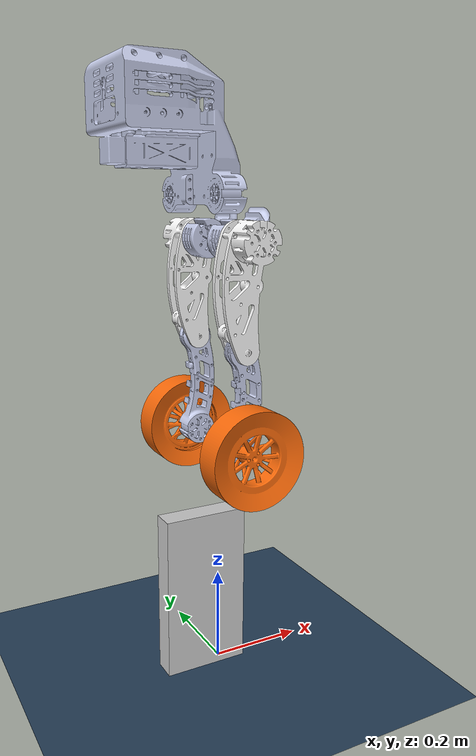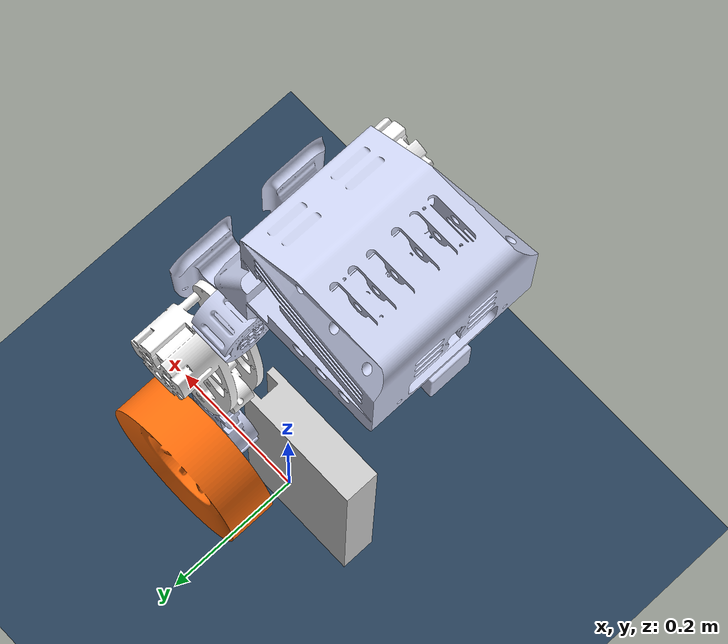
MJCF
<mujoco model="GOAT_on_Stand">
    <compiler angle="radian" coordinate="local" meshdir="../meshes/"/>
    <option timestep="0.01" gravity="0 0 -9.81"/>

    <!-- GOAT robot -->
    <include file="./goat_floating_no_hip.xml"/>

    <!-- Stand jig -->
    <asset>
        <mesh name="jig_mesh" file="GOAT_stand7mm35cm.stl" scale="0.9 1 1"/>
        <material name="jig_material" rgba="0.8 0.8 0.8 1.0"/>
    </asset>

    <worldbody>
        <light pos="0 0 1.5" dir="0 0 -1" directional="true"/>

        <body name="jig_link" pos="-0.04 0 0">
            <inertial pos="0 0 0" mass="10.0" fullinertia="0.05 0.05 0.05 0.0 0.0 0.0"/>
            <geom name="jig_geom" type="mesh" mesh="jig_mesh" material="jig_material"
                  pos="0 0 0" euler="0 0 -1.570796"
                  contype="1" conaffinity="1"/>
        </body>
    </worldbody>
</mujoco>

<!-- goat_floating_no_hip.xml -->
<mujoco model="GOAT_Floating">
    <compiler angle="radian" coordinate="local" meshdir="../meshes/" autolimits="true"/>

    <option timestep="0.01" gravity="0 0 -9.81" integrator="implicit" solver="Newton" iterations="4"/>

    <asset>
        <texture  name="groundplane" type="2d" builtin="checker" mark="edge" rgb1="0.2 0.3 0.4" rgb2="0.1 0.2 0.3" markrgb="0.8 0.8 0.8" width="512" height="512"/>
        <material name="groundplane" texture="groundplane" texuniform="true" texrepeat="5 5" reflectance="0.2"/>
    </asset>

    <worldbody>
        <light directional="true" diffuse=".8 .8 .8" specular=".2 .2 .2" pos="0 0 5" dir="0 0 -1"/>
        <geom name="floor" type="plane" size="0 0 1" material="groundplane"/>
    </worldbody>

    <asset>
        <mesh name="base_Link" file="base_Link_simple.stl"/>
        <mesh name="hip_L_Link" file="hip_L_Link.stl"/>
        <mesh name="hip_R_Link" file="hip_R_Link.stl"/>
        <mesh name="thigh_L_Link" file="thigh_L_Link.stl"/>
        <mesh name="thigh_R_Link" file="thigh_R_Link.stl"/>
        <mesh name="calf_L_Link" file="calf_L_Link.stl"/>
        <mesh name="calf_R_Link" file="calf_R_Link.stl"/>
        <mesh name="wheel_L_Link" file="BF_wheel_L_Link.stl"/>
        <mesh name="wheel_R_Link" file="BF_wheel_R_Link.stl"/>

        <material name="orange" rgba="1.0 0.423 0.039 1.0"/>
        <material name="black" rgba="0.792 0.819 0.933 1.0"/>
        <material name="white" rgba="1.0 1.0 1.0 1.0"/>
    </asset>

    <default>
        <geom contype="1" conaffinity="1" friction="0.6 0.1 0.1"/>
        <motor ctrllimited="true"/>
    </default>

    <worldbody>
        <body name="base_Link" pos="0 0 1.0">
            <!-- Floating base. Removing this drops nq 15 -> 8 and the 'home'
                 keyframe below stops matching; shrink its qpos too if you do. -->
            <freejoint name="root"/>
            <site name="imu_site" pos="0 0 0" size="0.01" type="sphere" rgba="1 0 0 1"/>

            <inertial pos="0 0 0" mass="3.153308" fullinertia="0.021860000 0.025170000 0.023520000 -0.000011699458 0.006702000 0.000004493943"/>
            <geom type="mesh" mesh="base_Link" material="black" pos="-0.112941 0 0.084350" contype="0" conaffinity="0" group="1"/>
            <geom type="box" size="0.107 0.100 0.095" pos="-0.011 0 0.056" group="3"/>
            <geom type="box" size="0.035 0.125 0.040" pos="0.07 0 -0.078" group="3"/>

            <body name="hip_L_Link" pos="0.049579 0.096336 -0.087088">
                <inertial pos="-0.043122 -0.038397 0.000190" mass="0.319" fullinertia="0.000146600 0.000204200 0.000181800 -0.000011403300 -0.000006278833 -0.000000904927"/>
                <geom type="mesh" mesh="hip_L_Link" material="black" contype="0" conaffinity="0" group="1"/>
                <geom type="cylinder" size="0.042 0.0675" pos="-0.0535 0 0" euler="1.57 0 0" group="3"/>

                <body name="thigh_L_Link" pos="-0.054 -0.017 0">
                    <joint name="thigh_L_Joint" type="hinge" axis="0 1 0" range="-0.3840 2.0071" damping="0.08" frictionloss="0.15" armature="0.00202"/>
                    <inertial pos="-0.002015 0.042352 -0.035272" mass="0.483216" fullinertia="0.002425000 0.002342000 0.000385000 -0.000020797926 -0.000075779875 -0.000378300"/>
                    <geom type="mesh" mesh="thigh_L_Link" material="white" contype="0" conaffinity="0" group="1"/>
                    <geom type="box" size="0.045 0.025 0.0725" pos="-0.011 0.016 -0.116" group="3"/>

                    <body name="calf_L_Link" pos="0 0.018 -0.205">
                        <joint name="knee_L_Joint" type="hinge" axis="0 -1 0" range="-0.523599 2.3387" damping="0.15" frictionloss="0.25" armature="0.00808"/>
                        <inertial pos="0.001969 0.000712 -0.160161" mass="0.303" fullinertia="0.001598000 0.001638000 0.000095365219 0.000000705710 -0.000031199137 0.000006440235"/>
                        <geom type="mesh" mesh="calf_L_Link" material="black" contype="0" conaffinity="0" group="1"/>
                        <geom type="cylinder" size="0.0325 0.1165" pos="0 0 -0.116" group="3"/>

                        <body name="wheel_L_Link" pos="0 0.016555 -0.200">
                            <joint name="wheel_L_Joint" type="hinge" axis="0 1 0" damping="0.002" frictionloss="0.02" armature="0.0014"/>
                            <inertial pos="0 0.030660 0" mass="0.985" fullinertia="0.003366000 0.006306000 0.003366000 0 0 0"/>
                            <geom type="mesh" mesh="wheel_L_Link" material="orange" contype="0" conaffinity="0" group="1"/>
                            <geom name="wheel_L_collision" type="cylinder" size="0.1 0.025" pos="0 0.03 0" euler="1.5707963267948966 0 0" group="3"/>
                        </body>
                    </body>
                </body>
            </body>

            <body name="hip_R_Link" pos="0.049579 -0.096336 -0.087088">
                <inertial pos="-0.043122 0.038397 0.000190" mass="0.319" fullinertia="0.000146600 0.000204200 0.000181800 0.000011403300 -0.000006278833 0.000000904927"/>
                <geom type="mesh" mesh="hip_R_Link" material="black" contype="0" conaffinity="0" group="1"/>
                <geom type="cylinder" size="0.042 0.0675" pos="-0.0535 0 0" euler="1.57 0 0" group="3"/>

                <body name="thigh_R_Link" pos="-0.054 0.017 0">
                    <joint name="thigh_R_Joint" type="hinge" axis="0 -1 0" range="-2.0071 0.3840" damping="0.08" frictionloss="0.15" armature="0.00202"/>
                    <inertial pos="-0.002015 -0.042352 -0.035272" mass="0.483216" fullinertia="0.002425000 0.002342000 0.000385000 0.000020797926 -0.000075779875 0.000378300"/>
                    <geom type="mesh" mesh="thigh_R_Link" material="white" contype="0" conaffinity="0" group="1"/>
                    <geom type="box" size="0.045 0.025 0.0725" pos="-0.011 -0.016 -0.116" group="3"/>

                    <body name="calf_R_Link" pos="0 -0.018 -0.205">
                        <joint name="knee_R_Joint" type="hinge" axis="0 1 0" range="-2.3387 0.523599" damping="0.15" frictionloss="0.25" armature="0.00808"/>
                        <inertial pos="0.001969 -0.000712 -0.160161" mass="0.303" fullinertia="0.001598000 0.001638000 0.000095365219 -0.000000705710 -0.000031199137 -0.000006440235"/>
                        <geom type="mesh" mesh="calf_R_Link" material="black" contype="0" conaffinity="0" group="1"/>
                        <geom type="cylinder" size="0.0325 0.1165" pos="0 0 -0.116" group="3"/>

                        <body name="wheel_R_Link" pos="0 -0.016555 -0.200">
                            <joint name="wheel_R_Joint" type="hinge" axis="0 -1 0" damping="0.002" frictionloss="0.02" armature="0.0014"/>
                            <inertial pos="0 -0.030660 0" mass="0.985" fullinertia="0.003366000 0.006306000 0.003366000 0 0 0"/>
                            <geom type="mesh" mesh="wheel_R_Link" material="orange" contype="0" conaffinity="0" group="1"/>
                            <geom name="wheel_R_collision" type="cylinder" size="0.1 0.025" pos="0 -0.03 0" euler="1.5707963267948966 0 0" group="3"/>
                        </body>
                    </body>
                </body>
            </body>
        </body>
    </worldbody>

    <contact>
        <exclude body1="base_Link"    body2="hip_L_Link"/>
        <exclude body1="base_Link"    body2="hip_R_Link"/>
        <exclude body1="base_Link"    body2="thigh_L_Link"/>
        <exclude body1="base_Link"    body2="thigh_R_Link"/>
        <exclude body1="base_Link"    body2="calf_L_Link"/>
        <exclude body1="base_Link"    body2="calf_R_Link"/>
        <exclude body1="base_Link"    body2="wheel_L_Link"/>
        <exclude body1="base_Link"    body2="wheel_R_Link"/>
        <exclude body1="hip_L_Link"   body2="hip_R_Link"/>
        <exclude body1="hip_L_Link"   body2="thigh_R_Link"/>
        <exclude body1="hip_L_Link"   body2="calf_L_Link"/>
        <exclude body1="hip_L_Link"   body2="calf_R_Link"/>
        <exclude body1="hip_L_Link"   body2="wheel_L_Link"/>
        <exclude body1="hip_L_Link"   body2="wheel_R_Link"/>
        <exclude body1="hip_R_Link"   body2="thigh_L_Link"/>
        <exclude body1="hip_R_Link"   body2="calf_L_Link"/>
        <exclude body1="hip_R_Link"   body2="calf_R_Link"/>
        <exclude body1="hip_R_Link"   body2="wheel_L_Link"/>
        <exclude body1="hip_R_Link"   body2="wheel_R_Link"/>
        <exclude body1="thigh_L_Link" body2="thigh_R_Link"/>
        <exclude body1="thigh_L_Link" body2="calf_R_Link"/>
        <exclude body1="thigh_L_Link" body2="wheel_L_Link"/>
        <exclude body1="thigh_L_Link" body2="wheel_R_Link"/>
        <exclude body1="thigh_R_Link" body2="calf_L_Link"/>
        <exclude body1="thigh_R_Link" body2="wheel_L_Link"/>
        <exclude body1="thigh_R_Link" body2="wheel_R_Link"/>
        <exclude body1="calf_L_Link"  body2="calf_R_Link"/>
        <exclude body1="calf_L_Link"  body2="wheel_R_Link"/>
        <exclude body1="calf_R_Link"  body2="wheel_L_Link"/>
        <exclude body1="wheel_L_Link" body2="wheel_R_Link"/>
    </contact>

    <!-- Torque actuators: ctrl is a joint torque [Nm]. Joint-level PD lives in
         the controller, matching the real robot's torque-setpoint driver. -->
    <actuator>
        <motor name="thigh_L_Joint" joint="thigh_L_Joint"    ctrllimited="true" ctrlrange="-4.5 4.5"    forcelimited="true" forcerange="-4.5 4.5"/>
        <motor name="knee_L_Joint"  joint="knee_L_Joint"     ctrllimited="true" ctrlrange="-9.0 9.0"    forcelimited="true" forcerange="-9.0 9.0"/>
        <motor name="wheel_L_Joint" joint="wheel_L_Joint"    ctrllimited="true" ctrlrange="-2.5 2.5"    forcelimited="true" forcerange="-2.5 2.5"/>
        <motor name="thigh_R_Joint" joint="thigh_R_Joint"    ctrllimited="true" ctrlrange="-4.5 4.5"    forcelimited="true" forcerange="-4.5 4.5"/>
        <motor name="knee_R_Joint"  joint="knee_R_Joint"     ctrllimited="true" ctrlrange="-9.0 9.0"    forcelimited="true" forcerange="-9.0 9.0"/>
        <motor name="wheel_R_Joint" joint="wheel_R_Joint"    ctrllimited="true" ctrlrange="-2.5 2.5"    forcelimited="true" forcerange="-2.5 2.5"/>
    </actuator>

    <sensor>
        <framequat name="imu_quat" objtype="site" objname="imu_site"/>
        <accelerometer name="imu_acc" site="imu_site"/>
        <gyro name="imu_gyro" site="imu_site"/>
        <magnetometer name="imu_mag" site="imu_site"/>
    </sensor>

    <keyframe>
        <key name="home"
             qpos="0 0 0.42676   1 0 0 0   0.9943 1.884 0   -0.9943 -1.884 0"
             qvel="0 0 0       0 0 0      0 0 0            0 0 0"
             ctrl=" 0 0 0      0 0 0"/>
    </keyframe>

</mujoco>
